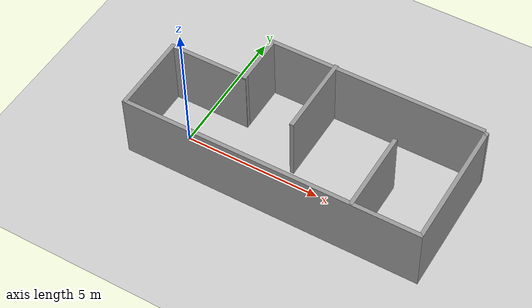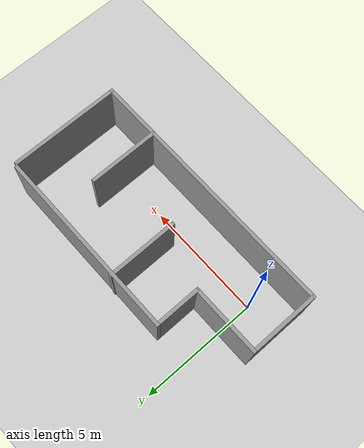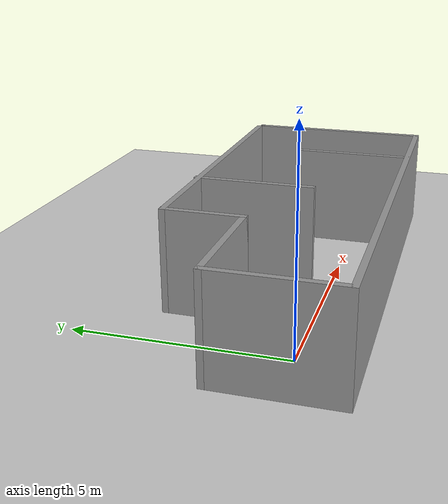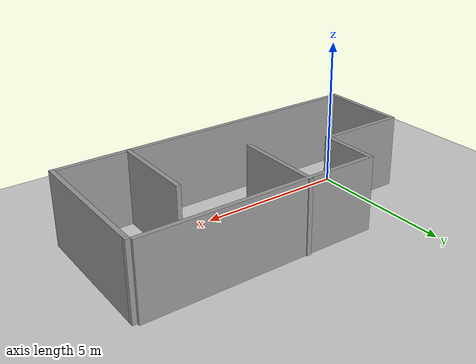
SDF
<sdf version="1.7">
 <world name="default">
  <light name="sun" type="directional">
   <pose>0 0 10 0 -0 0</pose>
   <diffuse>0.8 0.8 0.8 1</diffuse>
   <specular>0.2 0.2 0.2 1</specular>
   <attenuation>
    <range>1000</range>
    <constant>0.9</constant>
    <linear>0.01</linear>
    <quadratic>0.001</quadratic>
   </attenuation>
   <direction>-0.5 0.1 -0.9</direction>
   <spot><inner_angle>0</inner_angle><outer_angle>0</outer_angle><falloff>0</falloff></spot>
  </light>
  <model name="ground_plane">
   <static>1</static>
   <link name="link">
    <collision name="collision">
     <geometry><plane><normal>0 0 1</normal><size>100 100</size></plane></geometry>
     <surface>
      <contact><collide_bitmask>65535</collide_bitmask></contact>
      <friction><ode><mu>100</mu><mu2>50</mu2></ode></friction>
     </surface>
    </collision>
    <visual name="visual">
     <cast_shadows>0</cast_shadows>
     <geometry><plane><normal>0 0 1</normal><size>100 100</size></plane></geometry>
     <material>
      <script><uri>file://media/materials/scripts/gazebo.material</uri><name>Gazebo/Grey</name></script>
     </material>
    </visual>
   </link>
  </model>
  <gravity>0 0 -9.8</gravity>
  <magnetic_field>6e-06 2.3e-05 -4.2e-05</magnetic_field>
  <atmosphere type="adiabatic"/>
  <physics type="ode">
   <max_step_size>0.001</max_step_size>
   <real_time_factor>1</real_time_factor>
   <real_time_update_rate>1000</real_time_update_rate>
  </physics>
  <scene><ambient>0.4 0.4 0.4 1</ambient><background>0.7 0.7 0.7 1</background><shadows>1</shadows></scene>
  <spherical_coordinates>
   <surface_model>EARTH_WGS84</surface_model>
   <latitude_deg>0</latitude_deg>
   <longitude_deg>0</longitude_deg>
   <elevation>0</elevation>
   <heading_deg>0</heading_deg>
  </spherical_coordinates>
  <model name="room_0">
   <pose>3.97596 1.0011 0 0 -0 0</pose>
   <link name="Wall_1">
    <collision name="Wall_1_Collision">
     <geometry><box><size>8 0.15 2.5</size></box></geometry>
     <pose>0 0 1.25 0 -0 0</pose>
    </collision>
    <visual name="Wall_1_Visual">
     <pose>0 0 1.25 0 -0 0</pose>
     <geometry><box><size>8 0.15 2.5</size></box></geometry>
     <material>
      <script><uri>file://media/materials/scripts/gazebo.material</uri><name>Gazebo/Grey</name></script>
      <ambient>1 1 1 1</ambient>
     </material>
     <meta><layer>0</layer></meta>
    </visual>
    <pose>1.35 2.32884 0 0 -0 3.14159</pose>
   </link>
   <link name="Wall_11">
    <collision name="Wall_11_Collision">
     <geometry><box><size>3 0.15 2.5</size></box></geometry>
     <pose>0 0 1.25 0 -0 0</pose>
    </collision>
    <visual name="Wall_11_Visual">
     <pose>0 0 1.25 0 -0 0</pose>
     <geometry><box><size>3 0.15 2.5</size></box></geometry>
     <material>
      <script><uri>file://media/materials/scripts/gazebo.material</uri><name>Gazebo/Grey</name></script>
      <ambient>1 1 1 1</ambient>
     </material>
     <meta><layer>0</layer></meta>
    </visual>
    <pose>-0.185568 0.946157 0 0 -0 -1.5708</pose>
   </link>
   <link name="Wall_14">
    <collision name="Wall_14_Collision">
     <geometry><box><size>3 0.15 2.5</size></box></geometry>
     <pose>0 0 1.25 0 -0 0</pose>
    </collision>
    <visual name="Wall_14_Visual">
     <pose>0 0 1.25 0 -0 0</pose>
     <geometry><box><size>3 0.15 2.5</size></box></geometry>
     <material>
      <script><uri>file://media/materials/scripts/gazebo.material</uri><name>Gazebo/Grey</name></script>
      <ambient>1 1 1 1</ambient>
     </material>
     <meta><layer>0</layer></meta>
    </visual>
    <pose>3.00166 -0.911943 0 0 -0 1.5708</pose>
   </link>
   <link name="Wall_2">
    <collision name="Wall_2_Collision">
     <geometry><box><size>2 0.15 2.5</size></box></geometry>
     <pose>0 0 1.25 0 -0 0</pose>
    </collision>
    <visual name="Wall_2_Visual">
     <pose>0 0 1.25 0 -0 0</pose>
     <geometry><box><size>2 0.15 2.5</size></box></geometry>
     <material>
      <script><uri>file://media/materials/scripts/gazebo.material</uri><name>Gazebo/Grey</name></script>
      <ambient>1 1 1 1</ambient>
     </material>
     <meta><layer>0</layer></meta>
    </visual>
    <pose>-2.575 1.40384 0 0 -0 -1.5708</pose>
   </link>
   <link name="Wall_3">
    <collision name="Wall_3_Collision">
     <geometry><box><size>3 0.15 2.5</size></box></geometry>
     <pose>0 0 1.25 0 -0 0</pose>
    </collision>
    <visual name="Wall_3_Visual">
     <pose>0 0 1.25 0 -0 0</pose>
     <geometry><box><size>3 0.15 2.5</size></box></geometry>
     <material>
      <script><uri>file://media/materials/scripts/gazebo.material</uri><name>Gazebo/Grey</name></script>
      <ambient>1 1 1 1</ambient>
     </material>
     <meta><layer>0</layer></meta>
    </visual>
    <pose>-4 0.478843 0 0 -0 3.14159</pose>
   </link>
   <link name="Wall_4">
    <collision name="Wall_4_Collision">
     <geometry><box><size>3 0.15 2.5</size></box></geometry>
     <pose>0 0 1.25 0 -0 0</pose>
    </collision>
    <visual name="Wall_4_Visual">
     <pose>0 0 1.25 0 -0 0</pose>
     <geometry><box><size>3 0.15 2.5</size></box></geometry>
     <material>
      <script><uri>file://media/materials/scripts/gazebo.material</uri><name>Gazebo/Grey</name></script>
      <ambient>1 1 1 1</ambient>
     </material>
     <meta><layer>0</layer></meta>
    </visual>
    <pose>-5.425 -0.946157 0 0 -0 -1.5708</pose>
   </link>
   <link name="Wall_5">
    <collision name="Wall_5_Collision">
     <geometry><box><size>11 0.15 2.5</size></box></geometry>
     <pose>0 0 1.25 0 -0 0</pose>
    </collision>
    <visual name="Wall_5_Visual">
     <pose>0 0 1.25 0 -0 0</pose>
     <geometry><box><size>11 0.15 2.5</size></box></geometry>
     <material>
      <script><uri>file://media/materials/scripts/gazebo.material</uri><name>Gazebo/Grey</name></script>
      <ambient>1 1 1 1</ambient>
     </material>
     <meta><layer>0</layer></meta>
    </visual>
    <pose>-0 -2.37116 0 0 -0 0</pose>
   </link>
   <link name="Wall_6">
    <collision name="Wall_6_Collision">
     <geometry><box><size>4.75 0.15 2.5</size></box></geometry>
     <pose>0 0 1.25 0 -0 0</pose>
    </collision>
    <visual name="Wall_6_Visual">
     <pose>0 0 1.25 0 -0 0</pose>
     <geometry><box><size>4.75 0.15 2.5</size></box></geometry>
     <material>
      <script><uri>file://media/materials/scripts/gazebo.material</uri><name>Gazebo/Grey</name></script>
      <ambient>1 1 1 1</ambient>
     </material>
     <meta><layer>0</layer></meta>
    </visual>
    <pose>5.425 -0.071157 0 0 -0 1.5708</pose>
   </link>
   <link name="Wall_7">
    <collision name="Wall_7_Collision">
     <geometry><box><size>0.15 0.15 2.5</size></box></geometry>
     <pose>0 0 1.25 0 -0 0</pose>
    </collision>
    <visual name="Wall_7_Visual">
     <pose>0 0 1.25 0 -0 0</pose>
     <geometry><box><size>0.15 0.15 2.5</size></box></geometry>
     <material>
      <script><uri>file://media/materials/scripts/gazebo.material</uri><name>Gazebo/Grey</name></script>
      <ambient>1 1 1 1</ambient>
     </material>
     <meta><layer>0</layer></meta>
    </visual>
    <pose>5.425 2.22884 0 0 -0 0</pose>
   </link>
   <link name="Wall_8">
    <collision name="Wall_8_Collision">
     <geometry><box><size>0.15 0.15 2.5</size></box></geometry>
     <pose>0 0 1.25 0 -0 0</pose>
    </collision>
    <visual name="Wall_8_Visual">
     <pose>0 0 1.25 0 -0 0</pose>
     <geometry><box><size>0.15 0.15 2.5</size></box></geometry>
     <material>
      <script><uri>file://media/materials/scripts/gazebo.material</uri><name>Gazebo/Grey</name></script>
      <ambient>1 1 1 1</ambient>
     </material>
     <meta><layer>0</layer></meta>
    </visual>
    <pose>5.425 2.22884 0 0 -0 0</pose>
   </link>
   <static>1</static>
  </model>
 </world>
</sdf>
